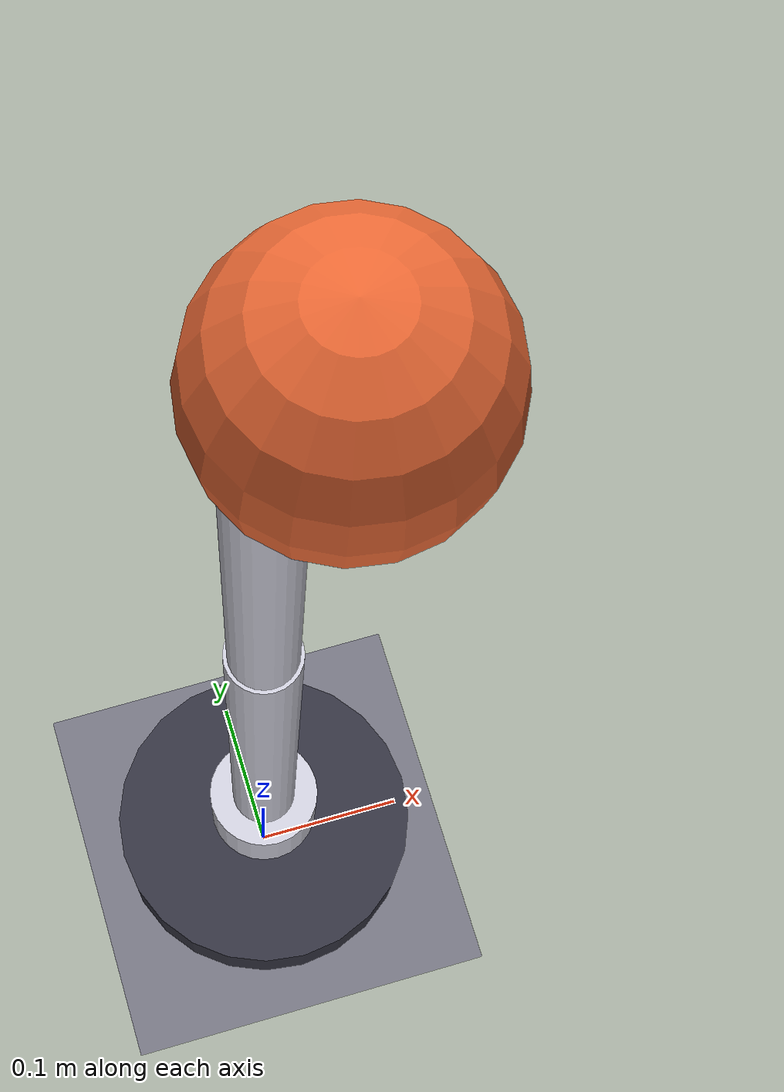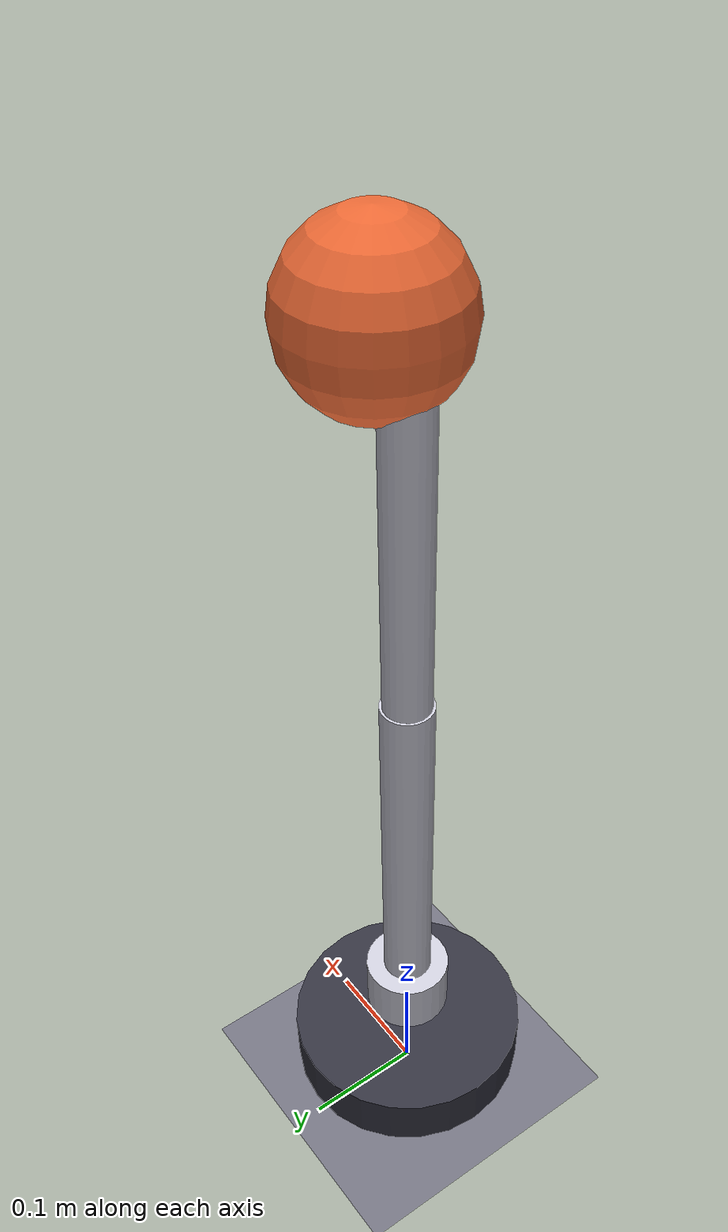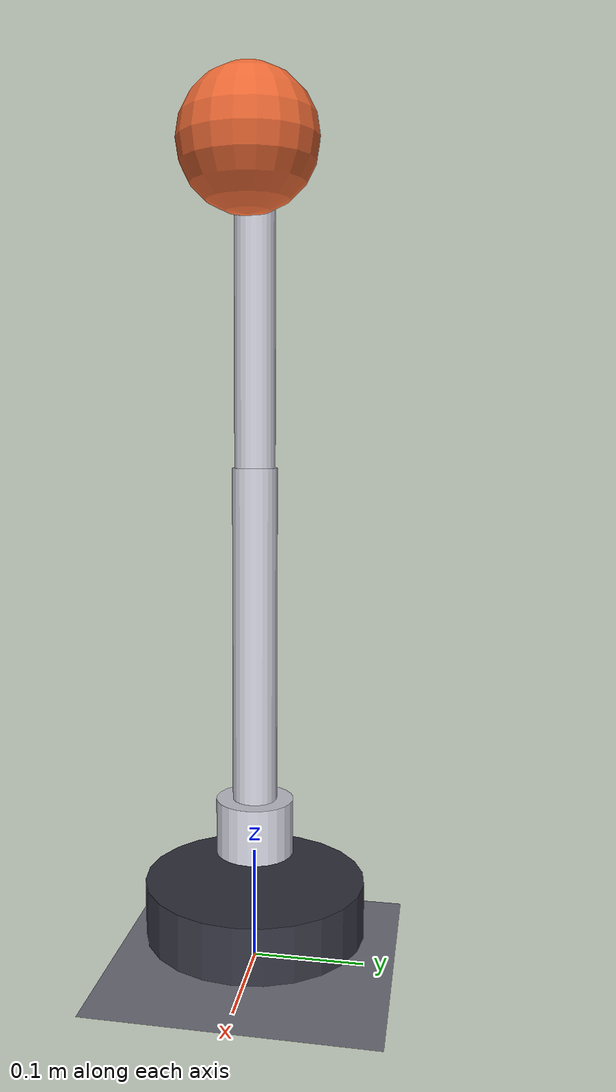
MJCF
<mujoco model="lelamp_5dof_fixed">
  <compiler angle="degree" inertiafromgeom="true"/>
  <option timestep="0.00417" gravity="0 0 -9.81"/>

  <asset>
    <material name="mat_base" rgba="0.20 0.20 0.25 1"/>
    <material name="mat_arm"  rgba="0.80 0.80 0.85 1"/>
    <material name="mat_head" rgba="0.90 0.40 0.20 1"/>
    <material name="mat_table" rgba="0.45 0.45 0.50 1"/>
  </asset>

  <default>
    <default class="sts3215">
      <joint damping="0.60" frictionloss="0.052" armature="0.028"/>
      <position kp="17.8" kv="0.0" forcerange="-3.35 3.35"/>
    </default>
  </default>

  <worldbody>
    <light pos="0 0 3" dir="0 0 -1" directional="true"/>
    <geom name="table" type="plane" pos="0 0 0" size="1 1 0.1" material="mat_table"/>

    <!-- 底座（固定） -->
    <body name="base_link" pos="0 0 0.05">
      <geom name="base_geom" type="cylinder" size="0.10 0.025" material="mat_base"/>

      <!-- j1 底座偏航 360°：-5.021034~1.262151 rad -->
      <body name="j1_link" pos="0 0 0.05">
        <joint name="joint1_yaw" class="sts3215" type="hinge" axis="0 0 1"
               range="-287.72 72.31"/>
        <geom type="cylinder" size="0.035 0.025" pos="0 0 0.025" material="mat_arm"/>

        <!-- j2 下臂俯仰 180°：-1.084258~2.057335 rad -->
        <body name="lower_arm" pos="0 0 0.05">
          <joint name="joint2_pitch" class="sts3215" type="hinge" axis="0 1 0"
                 range="-62.13 117.89"/>
          <geom type="cylinder" size="0.020 0.15" pos="0 0 0.15" material="mat_arm"/>

          <!-- j3 上臂俯仰 180°：-2.820024~0.321569 rad -->
          <body name="upper_arm" pos="0 0 0.30">
            <joint name="joint3_pitch" class="sts3215" type="hinge" axis="0 1 0"
                   range="-161.57 18.43"/>
            <geom type="cylinder" size="0.018 0.125" pos="0 0 0.125" material="mat_arm"/>

            <!-- j4 灯头翻滚 360°：-3.786540~2.496645 rad -->
            <body name="head_roll_link" pos="0 0 0.25">
              <joint name="joint4_roll" class="sts3215" type="hinge" axis="1 0 0"
                     range="-216.96 143.05"/>
              <geom type="cylinder" size="0.025 0.01" pos="0 0 0.01" material="mat_arm"/>

              <!-- j5 灯头俯仰 180°：-0.853337~2.288255 rad -->
              <body name="lamp_head" pos="0 0 0.02">
                <joint name="joint5_pitch" class="sts3215" type="hinge" axis="0 1 0"
                       range="-48.89 131.10"/>
                <geom name="head_geom" type="sphere" size="0.06" pos="0.03 0 0"
                      material="mat_head"/>
                <site name="head_tip" pos="0.03 0 0" size="0.005" rgba="1 1 0 0"/>
              </body>
            </body>
          </body>
        </body>
      </body>
    </body>
    <!-- OBSTACLES_PLACEHOLDER -->
  </worldbody>

  <actuator>
    <position class="sts3215" name="act_j1" joint="joint1_yaw"   inheritrange="1"/>
    <position class="sts3215" name="act_j2" joint="joint2_pitch" inheritrange="1"/>
    <position class="sts3215" name="act_j3" joint="joint3_pitch" inheritrange="1"/>
    <position class="sts3215" name="act_j4" joint="joint4_roll"  inheritrange="1"/>
    <position class="sts3215" name="act_j5" joint="joint5_pitch" inheritrange="1"/>
  </actuator>
</mujoco>
